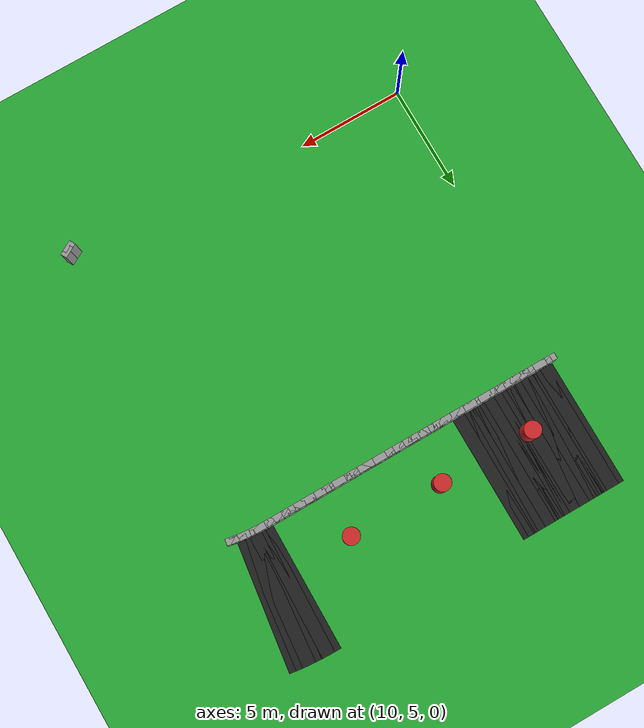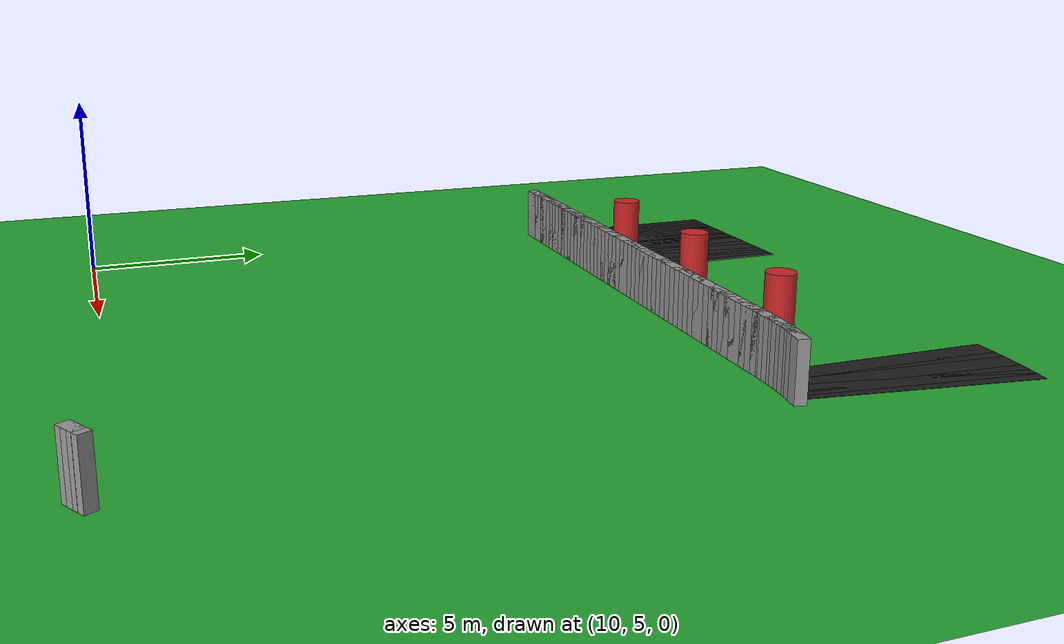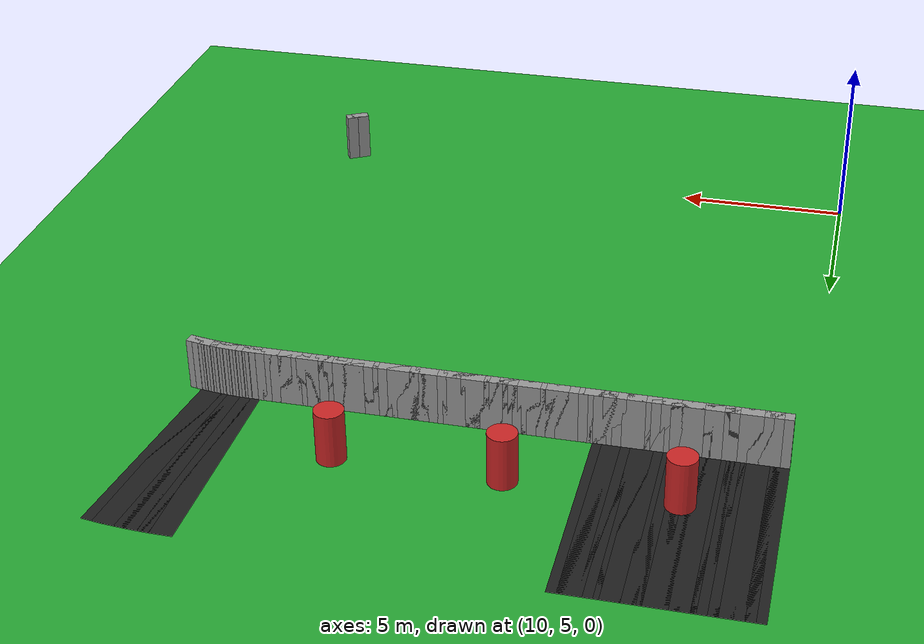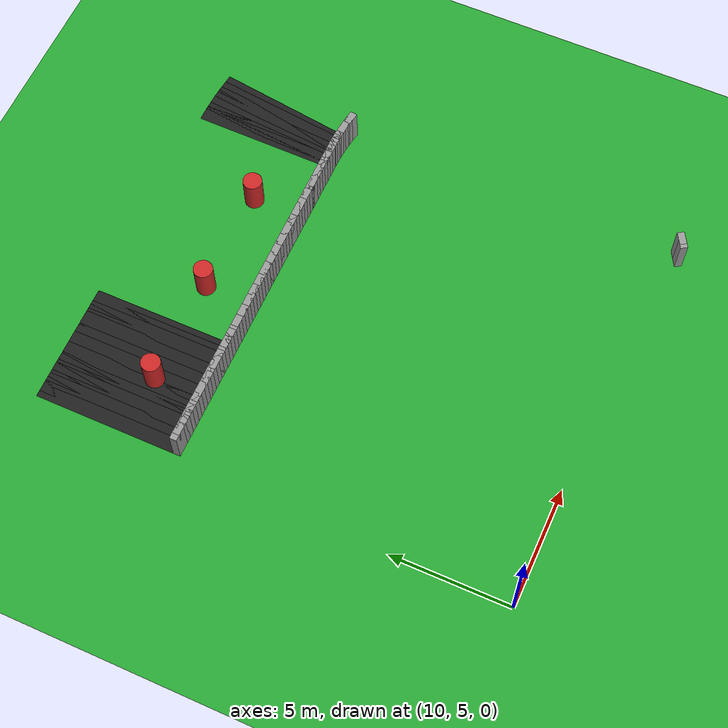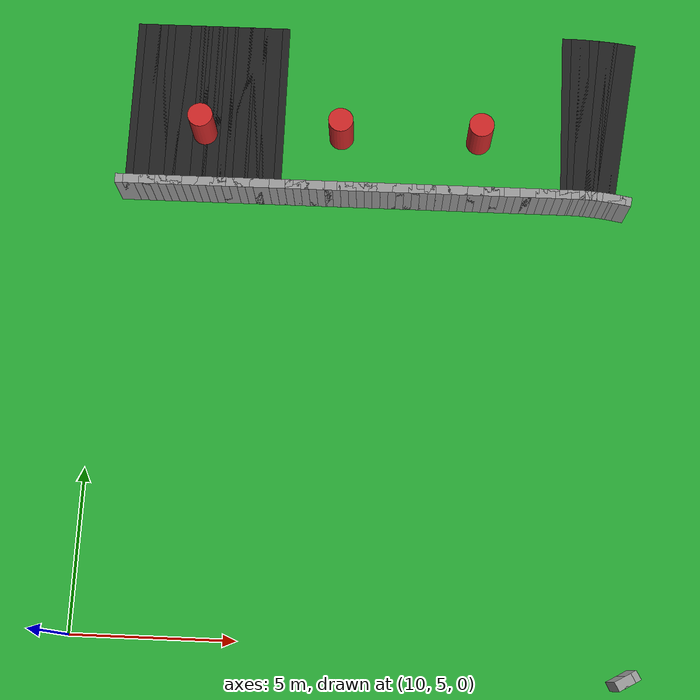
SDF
<sdf version="1.6">
 <world name="obstacle_asymturn">
  <include><uri>model://sun</uri></include>
  <model name="ground_plane">
   <static>true</static>
   <link name="link">
    <collision name="collision">
     <surface><friction><ode><mu>100</mu><mu2>50</mu2></ode></friction></surface>
     <geometry><plane><normal>0 0 1</normal><size>120 120</size></plane></geometry>
    </collision>
    <visual name="visual">
     <geometry><plane><normal>0 0 1</normal><size>120 120</size></plane></geometry>
     <material>
      <script><uri>file://media/materials/scripts/gazebo.material</uri><name>Gazebo/Green</name></script>
     </material>
    </visual>
   </link>
  </model>
  <model name="curbL_112">
   <static>true</static>
   <pose>26.292 4.261 0.750 0 0 0.50638</pose>
   <link name="link">
    <collision name="collision"><geometry><box><size>0.543 0.300 1.500</size></box></geometry></collision>
    <visual name="visual">
     <geometry><box><size>0.543 0.300 1.500</size></box></geometry>
     <material>
      <script><uri>file://media/materials/scripts/gazebo.material</uri><name>Gazebo/Grey</name></script>
     </material>
    </visual>
   </link>
  </model>
  <model name="curbL_113">
   <static>true</static>
   <pose>26.451 4.351 0.750 0 0 0.52704</pose>
   <link name="link">
    <collision name="collision"><geometry><box><size>0.543 0.300 1.500</size></box></geometry></collision>
    <visual name="visual">
     <geometry><box><size>0.543 0.300 1.500</size></box></geometry>
     <material>
      <script><uri>file://media/materials/scripts/gazebo.material</uri><name>Gazebo/Grey</name></script>
     </material>
    </visual>
   </link>
  </model>
  <model name="curbL_236">
   <static>true</static>
   <pose>26.375 18.876 0.750 0 0 2.96591</pose>
   <link name="link">
    <collision name="collision"><geometry><box><size>0.543 0.300 1.500</size></box></geometry></collision>
    <visual name="visual">
     <geometry><box><size>0.543 0.300 1.500</size></box></geometry>
     <material>
      <script><uri>file://media/materials/scripts/gazebo.material</uri><name>Gazebo/Grey</name></script>
     </material>
    </visual>
   </link>
  </model>
  <model name="curbL_237">
   <static>true</static>
   <pose>26.195 18.906 0.750 0 0 2.98658</pose>
   <link name="link">
    <collision name="collision"><geometry><box><size>0.543 0.300 1.500</size></box></geometry></collision>
    <visual name="visual">
     <geometry><box><size>0.543 0.300 1.500</size></box></geometry>
     <material>
      <script><uri>file://media/materials/scripts/gazebo.material</uri><name>Gazebo/Grey</name></script>
     </material>
    </visual>
   </link>
  </model>
  <model name="asphalt_238">
   <static>true</static>
   <pose>26.436 22.054 0.005 0 0 3.00725</pose>
   <link name="link">
    <visual name="visual">
     <geometry><box><size>0.608 6.000 0.010</size></box></geometry>
     <material>
      <script><uri>file://media/materials/scripts/gazebo.material</uri><name>Gazebo/Black</name></script>
     </material>
    </visual>
   </link>
  </model>
  <model name="curbL_238">
   <static>true</static>
   <pose>26.014 18.933 0.750 0 0 3.00725</pose>
   <link name="link">
    <collision name="collision"><geometry><box><size>0.543 0.300 1.500</size></box></geometry></collision>
    <visual name="visual">
     <geometry><box><size>0.543 0.300 1.500</size></box></geometry>
     <material>
      <script><uri>file://media/materials/scripts/gazebo.material</uri><name>Gazebo/Grey</name></script>
     </material>
    </visual>
   </link>
  </model>
  <model name="asphalt_239">
   <static>true</static>
   <pose>26.190 22.085 0.005 0 0 3.02792</pose>
   <link name="link">
    <visual name="visual">
     <geometry><box><size>0.608 6.000 0.010</size></box></geometry>
     <material>
      <script><uri>file://media/materials/scripts/gazebo.material</uri><name>Gazebo/Black</name></script>
     </material>
    </visual>
   </link>
  </model>
  <model name="curbL_239">
   <static>true</static>
   <pose>25.832 18.955 0.750 0 0 3.02792</pose>
   <link name="link">
    <collision name="collision"><geometry><box><size>0.543 0.300 1.500</size></box></geometry></collision>
    <visual name="visual">
     <geometry><box><size>0.543 0.300 1.500</size></box></geometry>
     <material>
      <script><uri>file://media/materials/scripts/gazebo.material</uri><name>Gazebo/Grey</name></script>
     </material>
    </visual>
   </link>
  </model>
  <model name="asphalt_240">
   <static>true</static>
   <pose>25.943 22.111 0.005 0 0 3.04858</pose>
   <link name="link">
    <visual name="visual">
     <geometry><box><size>0.608 6.000 0.010</size></box></geometry>
     <material>
      <script><uri>file://media/materials/scripts/gazebo.material</uri><name>Gazebo/Black</name></script>
     </material>
    </visual>
   </link>
  </model>
  <model name="curbL_240">
   <static>true</static>
   <pose>25.650 18.974 0.750 0 0 3.04858</pose>
   <link name="link">
    <collision name="collision"><geometry><box><size>0.543 0.300 1.500</size></box></geometry></collision>
    <visual name="visual">
     <geometry><box><size>0.543 0.300 1.500</size></box></geometry>
     <material>
      <script><uri>file://media/materials/scripts/gazebo.material</uri><name>Gazebo/Grey</name></script>
     </material>
    </visual>
   </link>
  </model>
  <model name="asphalt_241">
   <static>true</static>
   <pose>25.696 22.131 0.005 0 0 3.06925</pose>
   <link name="link">
    <visual name="visual">
     <geometry><box><size>0.608 6.000 0.010</size></box></geometry>
     <material>
      <script><uri>file://media/materials/scripts/gazebo.material</uri><name>Gazebo/Black</name></script>
     </material>
    </visual>
   </link>
  </model>
  <model name="curbL_241">
   <static>true</static>
   <pose>25.468 18.989 0.750 0 0 3.06925</pose>
   <link name="link">
    <collision name="collision"><geometry><box><size>0.543 0.300 1.500</size></box></geometry></collision>
    <visual name="visual">
     <geometry><box><size>0.543 0.300 1.500</size></box></geometry>
     <material>
      <script><uri>file://media/materials/scripts/gazebo.material</uri><name>Gazebo/Grey</name></script>
     </material>
    </visual>
   </link>
  </model>
  <model name="asphalt_242">
   <static>true</static>
   <pose>25.448 22.146 0.005 0 0 3.08992</pose>
   <link name="link">
    <visual name="visual">
     <geometry><box><size>0.608 6.000 0.010</size></box></geometry>
     <material>
      <script><uri>file://media/materials/scripts/gazebo.material</uri><name>Gazebo/Black</name></script>
     </material>
    </visual>
   </link>
  </model>
  <model name="curbL_242">
   <static>true</static>
   <pose>25.285 19.001 0.750 0 0 3.08992</pose>
   <link name="link">
    <collision name="collision"><geometry><box><size>0.543 0.300 1.500</size></box></geometry></collision>
    <visual name="visual">
     <geometry><box><size>0.543 0.300 1.500</size></box></geometry>
     <material>
      <script><uri>file://media/materials/scripts/gazebo.material</uri><name>Gazebo/Grey</name></script>
     </material>
    </visual>
   </link>
  </model>
  <model name="asphalt_243">
   <static>true</static>
   <pose>25.200 22.157 0.005 0 0 3.11059</pose>
   <link name="link">
    <visual name="visual">
     <geometry><box><size>0.608 6.000 0.010</size></box></geometry>
     <material>
      <script><uri>file://media/materials/scripts/gazebo.material</uri><name>Gazebo/Black</name></script>
     </material>
    </visual>
   </link>
  </model>
  <model name="curbL_243">
   <static>true</static>
   <pose>25.103 19.008 0.750 0 0 3.11059</pose>
   <link name="link">
    <collision name="collision"><geometry><box><size>0.543 0.300 1.500</size></box></geometry></collision>
    <visual name="visual">
     <geometry><box><size>0.543 0.300 1.500</size></box></geometry>
     <material>
      <script><uri>file://media/materials/scripts/gazebo.material</uri><name>Gazebo/Grey</name></script>
     </material>
    </visual>
   </link>
  </model>
  <model name="asphalt_244">
   <static>true</static>
   <pose>24.952 22.162 0.005 0 0 3.13126</pose>
   <link name="link">
    <visual name="visual">
     <geometry><box><size>0.608 6.000 0.010</size></box></geometry>
     <material>
      <script><uri>file://media/materials/scripts/gazebo.material</uri><name>Gazebo/Black</name></script>
     </material>
    </visual>
   </link>
  </model>
  <model name="curbL_244">
   <static>true</static>
   <pose>24.920 19.012 0.750 0 0 3.13126</pose>
   <link name="link">
    <collision name="collision"><geometry><box><size>0.543 0.300 1.500</size></box></geometry></collision>
    <visual name="visual">
     <geometry><box><size>0.543 0.300 1.500</size></box></geometry>
     <material>
      <script><uri>file://media/materials/scripts/gazebo.material</uri><name>Gazebo/Grey</name></script>
     </material>
    </visual>
   </link>
  </model>
  <model name="curbL_245">
   <static>true</static>
   <pose>24.703 19.013 0.750 0 0 3.14159</pose>
   <link name="link">
    <collision name="collision"><geometry><box><size>0.610 0.300 1.500</size></box></geometry></collision>
    <visual name="visual">
     <geometry><box><size>0.610 0.300 1.500</size></box></geometry>
     <material>
      <script><uri>file://media/materials/scripts/gazebo.material</uri><name>Gazebo/Grey</name></script>
     </material>
    </visual>
   </link>
  </model>
  <model name="curbL_246">
   <static>true</static>
   <pose>24.453 19.013 0.750 0 0 3.14159</pose>
   <link name="link">
    <collision name="collision"><geometry><box><size>0.610 0.300 1.500</size></box></geometry></collision>
    <visual name="visual">
     <geometry><box><size>0.610 0.300 1.500</size></box></geometry>
     <material>
      <script><uri>file://media/materials/scripts/gazebo.material</uri><name>Gazebo/Grey</name></script>
     </material>
    </visual>
   </link>
  </model>
  <model name="curbL_247">
   <static>true</static>
   <pose>24.203 19.013 0.750 0 0 3.14159</pose>
   <link name="link">
    <collision name="collision"><geometry><box><size>0.610 0.300 1.500</size></box></geometry></collision>
    <visual name="visual">
     <geometry><box><size>0.610 0.300 1.500</size></box></geometry>
     <material>
      <script><uri>file://media/materials/scripts/gazebo.material</uri><name>Gazebo/Grey</name></script>
     </material>
    </visual>
   </link>
  </model>
  <model name="curbL_248">
   <static>true</static>
   <pose>23.953 19.013 0.750 0 0 3.14159</pose>
   <link name="link">
    <collision name="collision"><geometry><box><size>0.610 0.300 1.500</size></box></geometry></collision>
    <visual name="visual">
     <geometry><box><size>0.610 0.300 1.500</size></box></geometry>
     <material>
      <script><uri>file://media/materials/scripts/gazebo.material</uri><name>Gazebo/Grey</name></script>
     </material>
    </visual>
   </link>
  </model>
  <model name="curbL_249">
   <static>true</static>
   <pose>23.703 19.013 0.750 0 0 3.14159</pose>
   <link name="link">
    <collision name="collision"><geometry><box><size>0.610 0.300 1.500</size></box></geometry></collision>
    <visual name="visual">
     <geometry><box><size>0.610 0.300 1.500</size></box></geometry>
     <material>
      <script><uri>file://media/materials/scripts/gazebo.material</uri><name>Gazebo/Grey</name></script>
     </material>
    </visual>
   </link>
  </model>
  <model name="curbL_250">
   <static>true</static>
   <pose>23.453 19.013 0.750 0 0 3.14159</pose>
   <link name="link">
    <collision name="collision"><geometry><box><size>0.610 0.300 1.500</size></box></geometry></collision>
    <visual name="visual">
     <geometry><box><size>0.610 0.300 1.500</size></box></geometry>
     <material>
      <script><uri>file://media/materials/scripts/gazebo.material</uri><name>Gazebo/Grey</name></script>
     </material>
    </visual>
   </link>
  </model>
  <model name="curbL_251">
   <static>true</static>
   <pose>23.203 19.013 0.750 0 0 3.14159</pose>
   <link name="link">
    <collision name="collision"><geometry><box><size>0.610 0.300 1.500</size></box></geometry></collision>
    <visual name="visual">
     <geometry><box><size>0.610 0.300 1.500</size></box></geometry>
     <material>
      <script><uri>file://media/materials/scripts/gazebo.material</uri><name>Gazebo/Grey</name></script>
     </material>
    </visual>
   </link>
  </model>
  <model name="curbL_252">
   <static>true</static>
   <pose>22.953 19.013 0.750 0 0 3.14159</pose>
   <link name="link">
    <collision name="collision"><geometry><box><size>0.610 0.300 1.500</size></box></geometry></collision>
    <visual name="visual">
     <geometry><box><size>0.610 0.300 1.500</size></box></geometry>
     <material>
      <script><uri>file://media/materials/scripts/gazebo.material</uri><name>Gazebo/Grey</name></script>
     </material>
    </visual>
   </link>
  </model>
  <model name="curbL_253">
   <static>true</static>
   <pose>22.703 19.013 0.750 0 0 3.14159</pose>
   <link name="link">
    <collision name="collision"><geometry><box><size>0.610 0.300 1.500</size></box></geometry></collision>
    <visual name="visual">
     <geometry><box><size>0.610 0.300 1.500</size></box></geometry>
     <material>
      <script><uri>file://media/materials/scripts/gazebo.material</uri><name>Gazebo/Grey</name></script>
     </material>
    </visual>
   </link>
  </model>
  <model name="curbL_254">
   <static>true</static>
   <pose>22.453 19.013 0.750 0 0 3.14159</pose>
   <link name="link">
    <collision name="collision"><geometry><box><size>0.610 0.300 1.500</size></box></geometry></collision>
    <visual name="visual">
     <geometry><box><size>0.610 0.300 1.500</size></box></geometry>
     <material>
      <script><uri>file://media/materials/scripts/gazebo.material</uri><name>Gazebo/Grey</name></script>
     </material>
    </visual>
   </link>
  </model>
  <model name="curbL_255">
   <static>true</static>
   <pose>22.203 19.013 0.750 0 0 3.14159</pose>
   <link name="link">
    <collision name="collision"><geometry><box><size>0.610 0.300 1.500</size></box></geometry></collision>
    <visual name="visual">
     <geometry><box><size>0.610 0.300 1.500</size></box></geometry>
     <material>
      <script><uri>file://media/materials/scripts/gazebo.material</uri><name>Gazebo/Grey</name></script>
     </material>
    </visual>
   </link>
  </model>
  <model name="curbL_256">
   <static>true</static>
   <pose>21.953 19.013 0.750 0 0 3.14159</pose>
   <link name="link">
    <collision name="collision"><geometry><box><size>0.610 0.300 1.500</size></box></geometry></collision>
    <visual name="visual">
     <geometry><box><size>0.610 0.300 1.500</size></box></geometry>
     <material>
      <script><uri>file://media/materials/scripts/gazebo.material</uri><name>Gazebo/Grey</name></script>
     </material>
    </visual>
   </link>
  </model>
  <model name="curbL_257">
   <static>true</static>
   <pose>21.703 19.013 0.750 0 0 3.14159</pose>
   <link name="link">
    <collision name="collision"><geometry><box><size>0.610 0.300 1.500</size></box></geometry></collision>
    <visual name="visual">
     <geometry><box><size>0.610 0.300 1.500</size></box></geometry>
     <material>
      <script><uri>file://media/materials/scripts/gazebo.material</uri><name>Gazebo/Grey</name></script>
     </material>
    </visual>
   </link>
  </model>
  <model name="curbL_258">
   <static>true</static>
   <pose>21.453 19.013 0.750 0 0 3.14159</pose>
   <link name="link">
    <collision name="collision"><geometry><box><size>0.610 0.300 1.500</size></box></geometry></collision>
    <visual name="visual">
     <geometry><box><size>0.610 0.300 1.500</size></box></geometry>
     <material>
      <script><uri>file://media/materials/scripts/gazebo.material</uri><name>Gazebo/Grey</name></script>
     </material>
    </visual>
   </link>
  </model>
  <model name="curbL_259">
   <static>true</static>
   <pose>21.203 19.013 0.750 0 0 3.14159</pose>
   <link name="link">
    <collision name="collision"><geometry><box><size>0.610 0.300 1.500</size></box></geometry></collision>
    <visual name="visual">
     <geometry><box><size>0.610 0.300 1.500</size></box></geometry>
     <material>
      <script><uri>file://media/materials/scripts/gazebo.material</uri><name>Gazebo/Grey</name></script>
     </material>
    </visual>
   </link>
  </model>
  <model name="curbL_260">
   <static>true</static>
   <pose>20.953 19.013 0.750 0 0 3.14159</pose>
   <link name="link">
    <collision name="collision"><geometry><box><size>0.610 0.300 1.500</size></box></geometry></collision>
    <visual name="visual">
     <geometry><box><size>0.610 0.300 1.500</size></box></geometry>
     <material>
      <script><uri>file://media/materials/scripts/gazebo.material</uri><name>Gazebo/Grey</name></script>
     </material>
    </visual>
   </link>
  </model>
  <model name="curbL_261">
   <static>true</static>
   <pose>20.703 19.013 0.750 0 0 3.14159</pose>
   <link name="link">
    <collision name="collision"><geometry><box><size>0.610 0.300 1.500</size></box></geometry></collision>
    <visual name="visual">
     <geometry><box><size>0.610 0.300 1.500</size></box></geometry>
     <material>
      <script><uri>file://media/materials/scripts/gazebo.material</uri><name>Gazebo/Grey</name></script>
     </material>
    </visual>
   </link>
  </model>
  <model name="curbL_262">
   <static>true</static>
   <pose>20.453 19.013 0.750 0 0 3.14159</pose>
   <link name="link">
    <collision name="collision"><geometry><box><size>0.610 0.300 1.500</size></box></geometry></collision>
    <visual name="visual">
     <geometry><box><size>0.610 0.300 1.500</size></box></geometry>
     <material>
      <script><uri>file://media/materials/scripts/gazebo.material</uri><name>Gazebo/Grey</name></script>
     </material>
    </visual>
   </link>
  </model>
  <model name="curbL_263">
   <static>true</static>
   <pose>20.203 19.013 0.750 0 0 3.14159</pose>
   <link name="link">
    <collision name="collision"><geometry><box><size>0.610 0.300 1.500</size></box></geometry></collision>
    <visual name="visual">
     <geometry><box><size>0.610 0.300 1.500</size></box></geometry>
     <material>
      <script><uri>file://media/materials/scripts/gazebo.material</uri><name>Gazebo/Grey</name></script>
     </material>
    </visual>
   </link>
  </model>
  <model name="curbL_264">
   <static>true</static>
   <pose>19.953 19.013 0.750 0 0 3.14159</pose>
   <link name="link">
    <collision name="collision"><geometry><box><size>0.610 0.300 1.500</size></box></geometry></collision>
    <visual name="visual">
     <geometry><box><size>0.610 0.300 1.500</size></box></geometry>
     <material>
      <script><uri>file://media/materials/scripts/gazebo.material</uri><name>Gazebo/Grey</name></script>
     </material>
    </visual>
   </link>
  </model>
  <model name="curbL_265">
   <static>true</static>
   <pose>19.703 19.013 0.750 0 0 3.14159</pose>
   <link name="link">
    <collision name="collision"><geometry><box><size>0.610 0.300 1.500</size></box></geometry></collision>
    <visual name="visual">
     <geometry><box><size>0.610 0.300 1.500</size></box></geometry>
     <material>
      <script><uri>file://media/materials/scripts/gazebo.material</uri><name>Gazebo/Grey</name></script>
     </material>
    </visual>
   </link>
  </model>
  <model name="curbL_266">
   <static>true</static>
   <pose>19.453 19.013 0.750 0 0 3.14159</pose>
   <link name="link">
    <collision name="collision"><geometry><box><size>0.610 0.300 1.500</size></box></geometry></collision>
    <visual name="visual">
     <geometry><box><size>0.610 0.300 1.500</size></box></geometry>
     <material>
      <script><uri>file://media/materials/scripts/gazebo.material</uri><name>Gazebo/Grey</name></script>
     </material>
    </visual>
   </link>
  </model>
  <model name="curbL_267">
   <static>true</static>
   <pose>19.203 19.013 0.750 0 0 3.14159</pose>
   <link name="link">
    <collision name="collision"><geometry><box><size>0.610 0.300 1.500</size></box></geometry></collision>
    <visual name="visual">
     <geometry><box><size>0.610 0.300 1.500</size></box></geometry>
     <material>
      <script><uri>file://media/materials/scripts/gazebo.material</uri><name>Gazebo/Grey</name></script>
     </material>
    </visual>
   </link>
  </model>
  <model name="curbL_268">
   <static>true</static>
   <pose>18.953 19.013 0.750 0 0 3.14159</pose>
   <link name="link">
    <collision name="collision"><geometry><box><size>0.610 0.300 1.500</size></box></geometry></collision>
    <visual name="visual">
     <geometry><box><size>0.610 0.300 1.500</size></box></geometry>
     <material>
      <script><uri>file://media/materials/scripts/gazebo.material</uri><name>Gazebo/Grey</name></script>
     </material>
    </visual>
   </link>
  </model>
  <model name="curbL_269">
   <static>true</static>
   <pose>18.703 19.013 0.750 0 0 3.14159</pose>
   <link name="link">
    <collision name="collision"><geometry><box><size>0.610 0.300 1.500</size></box></geometry></collision>
    <visual name="visual">
     <geometry><box><size>0.610 0.300 1.500</size></box></geometry>
     <material>
      <script><uri>file://media/materials/scripts/gazebo.material</uri><name>Gazebo/Grey</name></script>
     </material>
    </visual>
   </link>
  </model>
  <model name="curbL_270">
   <static>true</static>
   <pose>18.453 19.013 0.750 0 0 3.14159</pose>
   <link name="link">
    <collision name="collision"><geometry><box><size>0.610 0.300 1.500</size></box></geometry></collision>
    <visual name="visual">
     <geometry><box><size>0.610 0.300 1.500</size></box></geometry>
     <material>
      <script><uri>file://media/materials/scripts/gazebo.material</uri><name>Gazebo/Grey</name></script>
     </material>
    </visual>
   </link>
  </model>
  <model name="curbL_271">
   <static>true</static>
   <pose>18.203 19.013 0.750 0 0 3.14159</pose>
   <link name="link">
    <collision name="collision"><geometry><box><size>0.610 0.300 1.500</size></box></geometry></collision>
    <visual name="visual">
     <geometry><box><size>0.610 0.300 1.500</size></box></geometry>
     <material>
      <script><uri>file://media/materials/scripts/gazebo.material</uri><name>Gazebo/Grey</name></script>
     </material>
    </visual>
   </link>
  </model>
  <model name="curbL_272">
   <static>true</static>
   <pose>17.953 19.013 0.750 0 0 3.14159</pose>
   <link name="link">
    <collision name="collision"><geometry><box><size>0.610 0.300 1.500</size></box></geometry></collision>
    <visual name="visual">
     <geometry><box><size>0.610 0.300 1.500</size></box></geometry>
     <material>
      <script><uri>file://media/materials/scripts/gazebo.material</uri><name>Gazebo/Grey</name></script>
     </material>
    </visual>
   </link>
  </model>
  <model name="curbL_273">
   <static>true</static>
   <pose>17.703 19.013 0.750 0 0 3.14159</pose>
   <link name="link">
    <collision name="collision"><geometry><box><size>0.610 0.300 1.500</size></box></geometry></collision>
    <visual name="visual">
     <geometry><box><size>0.610 0.300 1.500</size></box></geometry>
     <material>
      <script><uri>file://media/materials/scripts/gazebo.material</uri><name>Gazebo/Grey</name></script>
     </material>
    </visual>
   </link>
  </model>
  <model name="curbL_274">
   <static>true</static>
   <pose>17.453 19.013 0.750 0 0 3.14159</pose>
   <link name="link">
    <collision name="collision"><geometry><box><size>0.610 0.300 1.500</size></box></geometry></collision>
    <visual name="visual">
     <geometry><box><size>0.610 0.300 1.500</size></box></geometry>
     <material>
      <script><uri>file://media/materials/scripts/gazebo.material</uri><name>Gazebo/Grey</name></script>
     </material>
    </visual>
   </link>
  </model>
  <model name="curbL_275">
   <static>true</static>
   <pose>17.203 19.013 0.750 0 0 3.14159</pose>
   <link name="link">
    <collision name="collision"><geometry><box><size>0.610 0.300 1.500</size></box></geometry></collision>
    <visual name="visual">
     <geometry><box><size>0.610 0.300 1.500</size></box></geometry>
     <material>
      <script><uri>file://media/materials/scripts/gazebo.material</uri><name>Gazebo/Grey</name></script>
     </material>
    </visual>
   </link>
  </model>
  <model name="curbL_276">
   <static>true</static>
   <pose>16.953 19.013 0.750 0 0 3.14159</pose>
   <link name="link">
    <collision name="collision"><geometry><box><size>0.610 0.300 1.500</size></box></geometry></collision>
    <visual name="visual">
     <geometry><box><size>0.610 0.300 1.500</size></box></geometry>
     <material>
      <script><uri>file://media/materials/scripts/gazebo.material</uri><name>Gazebo/Grey</name></script>
     </material>
    </visual>
   </link>
  </model>
  <model name="curbL_277">
   <static>true</static>
   <pose>16.703 19.013 0.750 0 0 3.14159</pose>
   <link name="link">
    <collision name="collision"><geometry><box><size>0.610 0.300 1.500</size></box></geometry></collision>
    <visual name="visual">
     <geometry><box><size>0.610 0.300 1.500</size></box></geometry>
     <material>
      <script><uri>file://media/materials/scripts/gazebo.material</uri><name>Gazebo/Grey</name></script>
     </material>
    </visual>
   </link>
  </model>
  <model name="curbL_278">
   <static>true</static>
   <pose>16.453 19.013 0.750 0 0 3.14159</pose>
   <link name="link">
    <collision name="collision"><geometry><box><size>0.610 0.300 1.500</size></box></geometry></collision>
    <visual name="visual">
     <geometry><box><size>0.610 0.300 1.500</size></box></geometry>
     <material>
      <script><uri>file://media/materials/scripts/gazebo.material</uri><name>Gazebo/Grey</name></script>
     </material>
    </visual>
   </link>
  </model>
  <model name="curbL_279">
   <static>true</static>
   <pose>16.203 19.013 0.750 0 0 3.14159</pose>
   <link name="link">
    <collision name="collision"><geometry><box><size>0.610 0.300 1.500</size></box></geometry></collision>
    <visual name="visual">
     <geometry><box><size>0.610 0.300 1.500</size></box></geometry>
     <material>
      <script><uri>file://media/materials/scripts/gazebo.material</uri><name>Gazebo/Grey</name></script>
     </material>
    </visual>
   </link>
  </model>
  <model name="curbL_280">
   <static>true</static>
   <pose>15.953 19.013 0.750 0 0 3.14159</pose>
   <link name="link">
    <collision name="collision"><geometry><box><size>0.610 0.300 1.500</size></box></geometry></collision>
    <visual name="visual">
     <geometry><box><size>0.610 0.300 1.500</size></box></geometry>
     <material>
      <script><uri>file://media/materials/scripts/gazebo.material</uri><name>Gazebo/Grey</name></script>
     </material>
    </visual>
   </link>
  </model>
  <model name="curbL_281">
   <static>true</static>
   <pose>15.703 19.013 0.750 0 0 3.14159</pose>
   <link name="link">
    <collision name="collision"><geometry><box><size>0.610 0.300 1.500</size></box></geometry></collision>
    <visual name="visual">
     <geometry><box><size>0.610 0.300 1.500</size></box></geometry>
     <material>
      <script><uri>file://media/materials/scripts/gazebo.material</uri><name>Gazebo/Grey</name></script>
     </material>
    </visual>
   </link>
  </model>
  <model name="curbL_282">
   <static>true</static>
   <pose>15.453 19.013 0.750 0 0 3.14159</pose>
   <link name="link">
    <collision name="collision"><geometry><box><size>0.610 0.300 1.500</size></box></geometry></collision>
    <visual name="visual">
     <geometry><box><size>0.610 0.300 1.500</size></box></geometry>
     <material>
      <script><uri>file://media/materials/scripts/gazebo.material</uri><name>Gazebo/Grey</name></script>
     </material>
    </visual>
   </link>
  </model>
  <model name="asphalt_283">
   <static>true</static>
   <pose>15.203 22.163 0.005 0 0 3.14159</pose>
   <link name="link">
    <visual name="visual">
     <geometry><box><size>0.610 6.000 0.010</size></box></geometry>
     <material>
      <script><uri>file://media/materials/scripts/gazebo.material</uri><name>Gazebo/Black</name></script>
     </material>
    </visual>
   </link>
  </model>
  <model name="curbL_283">
   <static>true</static>
   <pose>15.203 19.013 0.750 0 0 3.14159</pose>
   <link name="link">
    <collision name="collision"><geometry><box><size>0.610 0.300 1.500</size></box></geometry></collision>
    <visual name="visual">
     <geometry><box><size>0.610 0.300 1.500</size></box></geometry>
     <material>
      <script><uri>file://media/materials/scripts/gazebo.material</uri><name>Gazebo/Grey</name></script>
     </material>
    </visual>
   </link>
  </model>
  <model name="asphalt_284">
   <static>true</static>
   <pose>14.953 22.163 0.005 0 0 3.14159</pose>
   <link name="link">
    <visual name="visual">
     <geometry><box><size>0.610 6.000 0.010</size></box></geometry>
     <material>
      <script><uri>file://media/materials/scripts/gazebo.material</uri><name>Gazebo/Black</name></script>
     </material>
    </visual>
   </link>
  </model>
  <model name="curbL_284">
   <static>true</static>
   <pose>14.953 19.013 0.750 0 0 3.14159</pose>
   <link name="link">
    <collision name="collision"><geometry><box><size>0.610 0.300 1.500</size></box></geometry></collision>
    <visual name="visual">
     <geometry><box><size>0.610 0.300 1.500</size></box></geometry>
     <material>
      <script><uri>file://media/materials/scripts/gazebo.material</uri><name>Gazebo/Grey</name></script>
     </material>
    </visual>
   </link>
  </model>
  <model name="asphalt_285">
   <static>true</static>
   <pose>14.703 22.163 0.005 0 0 3.14159</pose>
   <link name="link">
    <visual name="visual">
     <geometry><box><size>0.610 6.000 0.010</size></box></geometry>
     <material>
      <script><uri>file://media/materials/scripts/gazebo.material</uri><name>Gazebo/Black</name></script>
     </material>
    </visual>
   </link>
  </model>
  <model name="curbL_285">
   <static>true</static>
   <pose>14.703 19.013 0.750 0 0 3.14159</pose>
   <link name="link">
    <collision name="collision"><geometry><box><size>0.610 0.300 1.500</size></box></geometry></collision>
    <visual name="visual">
     <geometry><box><size>0.610 0.300 1.500</size></box></geometry>
     <material>
      <script><uri>file://media/materials/scripts/gazebo.material</uri><name>Gazebo/Grey</name></script>
     </material>
    </visual>
   </link>
  </model>
  <model name="asphalt_286">
   <static>true</static>
   <pose>14.453 22.163 0.005 0 0 3.14159</pose>
   <link name="link">
    <visual name="visual">
     <geometry><box><size>0.610 6.000 0.010</size></box></geometry>
     <material>
      <script><uri>file://media/materials/scripts/gazebo.material</uri><name>Gazebo/Black</name></script>
     </material>
    </visual>
   </link>
  </model>
  <model name="curbL_286">
   <static>true</static>
   <pose>14.453 19.013 0.750 0 0 3.14159</pose>
   <link name="link">
    <collision name="collision"><geometry><box><size>0.610 0.300 1.500</size></box></geometry></collision>
    <visual name="visual">
     <geometry><box><size>0.610 0.300 1.500</size></box></geometry>
     <material>
      <script><uri>file://media/materials/scripts/gazebo.material</uri><name>Gazebo/Grey</name></script>
     </material>
    </visual>
   </link>
  </model>
  <model name="asphalt_287">
   <static>true</static>
   <pose>14.203 22.163 0.005 0 0 3.14159</pose>
   <link name="link">
    <visual name="visual">
     <geometry><box><size>0.610 6.000 0.010</size></box></geometry>
     <material>
      <script><uri>file://media/materials/scripts/gazebo.material</uri><name>Gazebo/Black</name></script>
     </material>
    </visual>
   </link>
  </model>
  <model name="curbL_287">
   <static>true</static>
   <pose>14.203 19.013 0.750 0 0 3.14159</pose>
   <link name="link">
    <collision name="collision"><geometry><box><size>0.610 0.300 1.500</size></box></geometry></collision>
    <visual name="visual">
     <geometry><box><size>0.610 0.300 1.500</size></box></geometry>
     <material>
      <script><uri>file://media/materials/scripts/gazebo.material</uri><name>Gazebo/Grey</name></script>
     </material>
    </visual>
   </link>
  </model>
  <model name="asphalt_288">
   <static>true</static>
   <pose>13.953 22.163 0.005 0 0 3.14159</pose>
   <link name="link">
    <visual name="visual">
     <geometry><box><size>0.610 6.000 0.010</size></box></geometry>
     <material>
      <script><uri>file://media/materials/scripts/gazebo.material</uri><name>Gazebo/Black</name></script>
     </material>
    </visual>
   </link>
  </model>
  <model name="curbL_288">
   <static>true</static>
   <pose>13.953 19.013 0.750 0 0 3.14159</pose>
   <link name="link">
    <collision name="collision"><geometry><box><size>0.610 0.300 1.500</size></box></geometry></collision>
    <visual name="visual">
     <geometry><box><size>0.610 0.300 1.500</size></box></geometry>
     <material>
      <script><uri>file://media/materials/scripts/gazebo.material</uri><name>Gazebo/Grey</name></script>
     </material>
    </visual>
   </link>
  </model>
  <model name="asphalt_289">
   <static>true</static>
   <pose>13.703 22.163 0.005 0 0 3.14159</pose>
   <link name="link">
    <visual name="visual">
     <geometry><box><size>0.610 6.000 0.010</size></box></geometry>
     <material>
      <script><uri>file://media/materials/scripts/gazebo.material</uri><name>Gazebo/Black</name></script>
     </material>
    </visual>
   </link>
  </model>
  <model name="curbL_289">
   <static>true</static>
   <pose>13.703 19.013 0.750 0 0 3.14159</pose>
   <link name="link">
    <collision name="collision"><geometry><box><size>0.610 0.300 1.500</size></box></geometry></collision>
    <visual name="visual">
     <geometry><box><size>0.610 0.300 1.500</size></box></geometry>
     <material>
      <script><uri>file://media/materials/scripts/gazebo.material</uri><name>Gazebo/Grey</name></script>
     </material>
    </visual>
   </link>
  </model>
  <model name="asphalt_290">
   <static>true</static>
   <pose>13.453 22.163 0.005 0 0 3.14159</pose>
   <link name="link">
    <visual name="visual">
     <geometry><box><size>0.610 6.000 0.010</size></box></geometry>
     <material>
      <script><uri>file://media/materials/scripts/gazebo.material</uri><name>Gazebo/Black</name></script>
     </material>
    </visual>
   </link>
  </model>
  <model name="curbL_290">
   <static>true</static>
   <pose>13.453 19.013 0.750 0 0 3.14159</pose>
   <link name="link">
    <collision name="collision"><geometry><box><size>0.610 0.300 1.500</size></box></geometry></collision>
    <visual name="visual">
     <geometry><box><size>0.610 0.300 1.500</size></box></geometry>
     <material>
      <script><uri>file://media/materials/scripts/gazebo.material</uri><name>Gazebo/Grey</name></script>
     </material>
    </visual>
   </link>
  </model>
  <model name="asphalt_291">
   <static>true</static>
   <pose>13.203 22.163 0.005 0 0 3.14159</pose>
   <link name="link">
    <visual name="visual">
     <geometry><box><size>0.610 6.000 0.010</size></box></geometry>
     <material>
      <script><uri>file://media/materials/scripts/gazebo.material</uri><name>Gazebo/Black</name></script>
     </material>
    </visual>
   </link>
  </model>
  <model name="curbL_291">
   <static>true</static>
   <pose>13.203 19.013 0.750 0 0 3.14159</pose>
   <link name="link">
    <collision name="collision"><geometry><box><size>0.610 0.300 1.500</size></box></geometry></collision>
    <visual name="visual">
     <geometry><box><size>0.610 0.300 1.500</size></box></geometry>
     <material>
      <script><uri>file://media/materials/scripts/gazebo.material</uri><name>Gazebo/Grey</name></script>
     </material>
    </visual>
   </link>
  </model>
  <model name="asphalt_292">
   <static>true</static>
   <pose>12.953 22.163 0.005 0 0 3.14159</pose>
   <link name="link">
    <visual name="visual">
     <geometry><box><size>0.610 6.000 0.010</size></box></geometry>
     <material>
      <script><uri>file://media/materials/scripts/gazebo.material</uri><name>Gazebo/Black</name></script>
     </material>
    </visual>
   </link>
  </model>
  <model name="curbL_292">
   <static>true</static>
   <pose>12.953 19.013 0.750 0 0 3.14159</pose>
   <link name="link">
    <collision name="collision"><geometry><box><size>0.610 0.300 1.500</size></box></geometry></collision>
    <visual name="visual">
     <geometry><box><size>0.610 0.300 1.500</size></box></geometry>
     <material>
      <script><uri>file://media/materials/scripts/gazebo.material</uri><name>Gazebo/Grey</name></script>
     </material>
    </visual>
   </link>
  </model>
  <model name="asphalt_293">
   <static>true</static>
   <pose>12.703 22.163 0.005 0 0 3.14159</pose>
   <link name="link">
    <visual name="visual">
     <geometry><box><size>0.610 6.000 0.010</size></box></geometry>
     <material>
      <script><uri>file://media/materials/scripts/gazebo.material</uri><name>Gazebo/Black</name></script>
     </material>
    </visual>
   </link>
  </model>
  <model name="curbL_293">
   <static>true</static>
   <pose>12.703 19.013 0.750 0 0 3.14159</pose>
   <link name="link">
    <collision name="collision"><geometry><box><size>0.610 0.300 1.500</size></box></geometry></collision>
    <visual name="visual">
     <geometry><box><size>0.610 0.300 1.500</size></box></geometry>
     <material>
      <script><uri>file://media/materials/scripts/gazebo.material</uri><name>Gazebo/Grey</name></script>
     </material>
    </visual>
   </link>
  </model>
  <model name="asphalt_294">
   <static>true</static>
   <pose>12.453 22.163 0.005 0 0 3.14159</pose>
   <link name="link">
    <visual name="visual">
     <geometry><box><size>0.610 6.000 0.010</size></box></geometry>
     <material>
      <script><uri>file://media/materials/scripts/gazebo.material</uri><name>Gazebo/Black</name></script>
     </material>
    </visual>
   </link>
  </model>
  <model name="curbL_294">
   <static>true</static>
   <pose>12.453 19.013 0.750 0 0 3.14159</pose>
   <link name="link">
    <collision name="collision"><geometry><box><size>0.610 0.300 1.500</size></box></geometry></collision>
    <visual name="visual">
     <geometry><box><size>0.610 0.300 1.500</size></box></geometry>
     <material>
      <script><uri>file://media/materials/scripts/gazebo.material</uri><name>Gazebo/Grey</name></script>
     </material>
    </visual>
   </link>
  </model>
  <model name="asphalt_295">
   <static>true</static>
   <pose>12.203 22.163 0.005 0 0 3.14159</pose>
   <link name="link">
    <visual name="visual">
     <geometry><box><size>0.610 6.000 0.010</size></box></geometry>
     <material>
      <script><uri>file://media/materials/scripts/gazebo.material</uri><name>Gazebo/Black</name></script>
     </material>
    </visual>
   </link>
  </model>
  <model name="curbL_295">
   <static>true</static>
   <pose>12.203 19.013 0.750 0 0 3.14159</pose>
   <link name="link">
    <collision name="collision"><geometry><box><size>0.610 0.300 1.500</size></box></geometry></collision>
    <visual name="visual">
     <geometry><box><size>0.610 0.300 1.500</size></box></geometry>
     <material>
      <script><uri>file://media/materials/scripts/gazebo.material</uri><name>Gazebo/Grey</name></script>
     </material>
    </visual>
   </link>
  </model>
  <model name="asphalt_296">
   <static>true</static>
   <pose>11.953 22.163 0.005 0 0 3.14159</pose>
   <link name="link">
    <visual name="visual">
     <geometry><box><size>0.610 6.000 0.010</size></box></geometry>
     <material>
      <script><uri>file://media/materials/scripts/gazebo.material</uri><name>Gazebo/Black</name></script>
     </material>
    </visual>
   </link>
  </model>
  <model name="curbL_296">
   <static>true</static>
   <pose>11.953 19.013 0.750 0 0 3.14159</pose>
   <link name="link">
    <collision name="collision"><geometry><box><size>0.610 0.300 1.500</size></box></geometry></collision>
    <visual name="visual">
     <geometry><box><size>0.610 0.300 1.500</size></box></geometry>
     <material>
      <script><uri>file://media/materials/scripts/gazebo.material</uri><name>Gazebo/Grey</name></script>
     </material>
    </visual>
   </link>
  </model>
  <model name="asphalt_297">
   <static>true</static>
   <pose>11.703 22.163 0.005 0 0 3.14159</pose>
   <link name="link">
    <visual name="visual">
     <geometry><box><size>0.610 6.000 0.010</size></box></geometry>
     <material>
      <script><uri>file://media/materials/scripts/gazebo.material</uri><name>Gazebo/Black</name></script>
     </material>
    </visual>
   </link>
  </model>
  <model name="curbL_297">
   <static>true</static>
   <pose>11.703 19.013 0.750 0 0 3.14159</pose>
   <link name="link">
    <collision name="collision"><geometry><box><size>0.610 0.300 1.500</size></box></geometry></collision>
    <visual name="visual">
     <geometry><box><size>0.610 0.300 1.500</size></box></geometry>
     <material>
      <script><uri>file://media/materials/scripts/gazebo.material</uri><name>Gazebo/Grey</name></script>
     </material>
    </visual>
   </link>
  </model>
  <model name="asphalt_298">
   <static>true</static>
   <pose>11.453 22.163 0.005 0 0 3.14159</pose>
   <link name="link">
    <visual name="visual">
     <geometry><box><size>0.610 6.000 0.010</size></box></geometry>
     <material>
      <script><uri>file://media/materials/scripts/gazebo.material</uri><name>Gazebo/Black</name></script>
     </material>
    </visual>
   </link>
  </model>
  <model name="curbL_298">
   <static>true</static>
   <pose>11.453 19.013 0.750 0 0 3.14159</pose>
   <link name="link">
    <collision name="collision"><geometry><box><size>0.610 0.300 1.500</size></box></geometry></collision>
    <visual name="visual">
     <geometry><box><size>0.610 0.300 1.500</size></box></geometry>
     <material>
      <script><uri>file://media/materials/scripts/gazebo.material</uri><name>Gazebo/Grey</name></script>
     </material>
    </visual>
   </link>
  </model>
  <model name="asphalt_299">
   <static>true</static>
   <pose>11.203 22.163 0.005 0 0 3.14159</pose>
   <link name="link">
    <visual name="visual">
     <geometry><box><size>0.610 6.000 0.010</size></box></geometry>
     <material>
      <script><uri>file://media/materials/scripts/gazebo.material</uri><name>Gazebo/Black</name></script>
     </material>
    </visual>
   </link>
  </model>
  <model name="curbL_299">
   <static>true</static>
   <pose>11.203 19.013 0.750 0 0 3.14159</pose>
   <link name="link">
    <collision name="collision"><geometry><box><size>0.610 0.300 1.500</size></box></geometry></collision>
    <visual name="visual">
     <geometry><box><size>0.610 0.300 1.500</size></box></geometry>
     <material>
      <script><uri>file://media/materials/scripts/gazebo.material</uri><name>Gazebo/Grey</name></script>
     </material>
    </visual>
   </link>
  </model>
  <model name="asphalt_300">
   <static>true</static>
   <pose>10.953 22.163 0.005 0 0 3.14159</pose>
   <link name="link">
    <visual name="visual">
     <geometry><box><size>0.610 6.000 0.010</size></box></geometry>
     <material>
      <script><uri>file://media/materials/scripts/gazebo.material</uri><name>Gazebo/Black</name></script>
     </material>
    </visual>
   </link>
  </model>
  <model name="curbL_300">
   <static>true</static>
   <pose>10.953 19.013 0.750 0 0 3.14159</pose>
   <link name="link">
    <collision name="collision"><geometry><box><size>0.610 0.300 1.500</size></box></geometry></collision>
    <visual name="visual">
     <geometry><box><size>0.610 0.300 1.500</size></box></geometry>
     <material>
      <script><uri>file://media/materials/scripts/gazebo.material</uri><name>Gazebo/Grey</name></script>
     </material>
    </visual>
   </link>
  </model>
  <model name="asphalt_301">
   <static>true</static>
   <pose>10.703 22.163 0.005 0 0 3.14159</pose>
   <link name="link">
    <visual name="visual">
     <geometry><box><size>0.610 6.000 0.010</size></box></geometry>
     <material>
      <script><uri>file://media/materials/scripts/gazebo.material</uri><name>Gazebo/Black</name></script>
     </material>
    </visual>
   </link>
  </model>
  <model name="curbL_301">
   <static>true</static>
   <pose>10.703 19.013 0.750 0 0 3.14159</pose>
   <link name="link">
    <collision name="collision"><geometry><box><size>0.610 0.300 1.500</size></box></geometry></collision>
    <visual name="visual">
     <geometry><box><size>0.610 0.300 1.500</size></box></geometry>
     <material>
      <script><uri>file://media/materials/scripts/gazebo.material</uri><name>Gazebo/Grey</name></script>
     </material>
    </visual>
   </link>
  </model>
  <model name="obs_8">
   <static>true</static>
   <pose>21.919 21.263 0.750 0 0 0</pose>
   <link name="link">
    <collision name="collision">
     <geometry><cylinder><radius>0.400</radius><length>1.500</length></cylinder></geometry>
    </collision>
    <visual name="visual">
     <geometry><cylinder><radius>0.400</radius><length>1.500</length></cylinder></geometry>
     <material>
      <script><uri>file://media/materials/scripts/gazebo.material</uri><name>Gazebo/Red</name></script>
     </material>
    </visual>
   </link>
  </model>
  <model name="obs_9">
   <static>true</static>
   <pose>17.419 21.263 0.750 0 0 0</pose>
   <link name="link">
    <collision name="collision">
     <geometry><cylinder><radius>0.400</radius><length>1.500</length></cylinder></geometry>
    </collision>
    <visual name="visual">
     <geometry><cylinder><radius>0.400</radius><length>1.500</length></cylinder></geometry>
     <material>
      <script><uri>file://media/materials/scripts/gazebo.material</uri><name>Gazebo/Red</name></script>
     </material>
    </visual>
   </link>
  </model>
  <model name="obs_10">
   <static>true</static>
   <pose>12.919 21.263 0.750 0 0 0</pose>
   <link name="link">
    <collision name="collision">
     <geometry><cylinder><radius>0.400</radius><length>1.500</length></cylinder></geometry>
    </collision>
    <visual name="visual">
     <geometry><cylinder><radius>0.400</radius><length>1.500</length></cylinder></geometry>
     <material>
      <script><uri>file://media/materials/scripts/gazebo.material</uri><name>Gazebo/Red</name></script>
     </material>
    </visual>
   </link>
  </model>
 </world>
</sdf>
